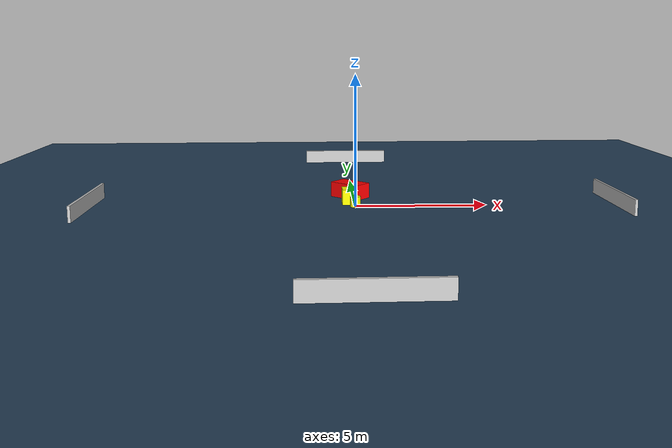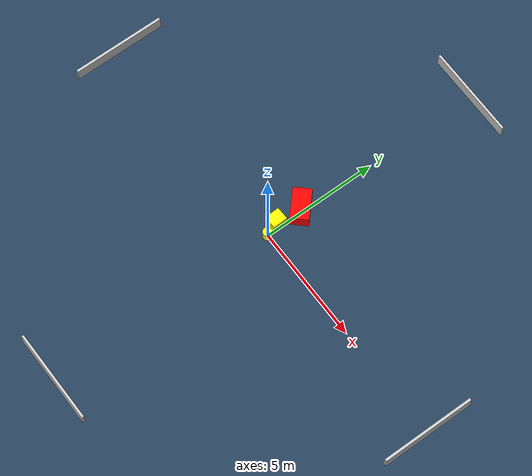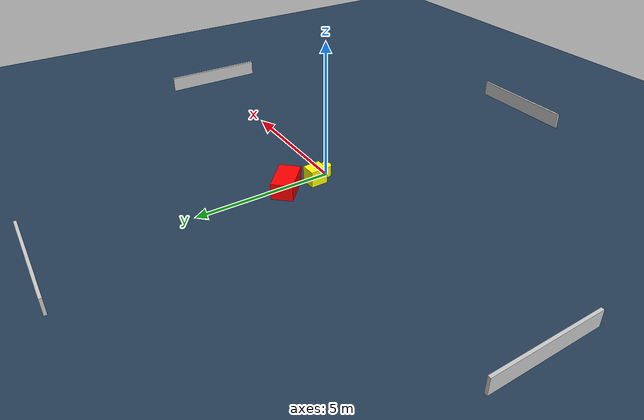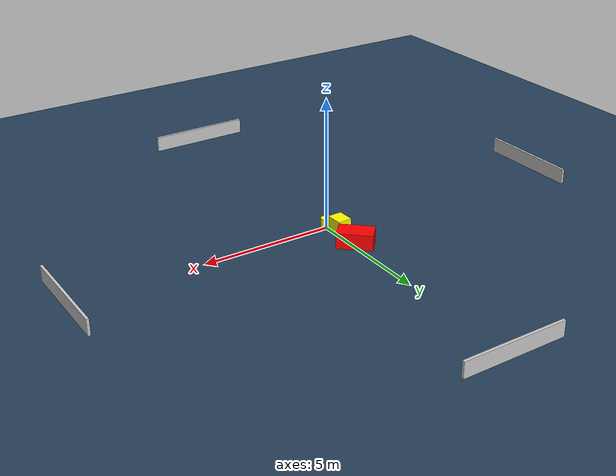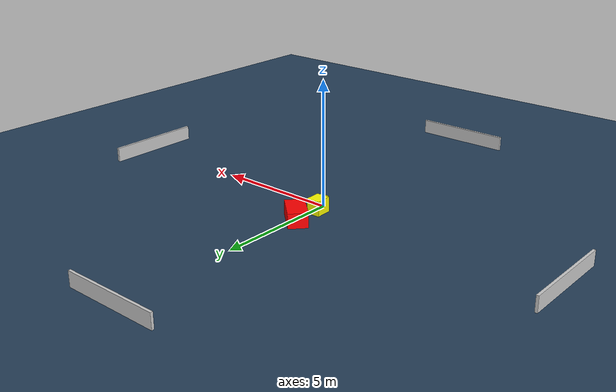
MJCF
<?xml version="1.0" ?>
<mujoco model="generated_environment">
  <option timestep="0.01" integrator="RK4" cone="elliptic"/>
  <default>
    <geom density="1"/>
  </default>
  <asset>
    <texture builtin="gradient" height="3072" name="skybox" rgb1="0.3 0.5 0.7" rgb2="0 0 0" type="skybox" width="512"/>
    <texture builtin="checker" height="300" name="groundplane" rgb1="0.2 0.3 0.4" rgb2="0.1 0.2 0.3" type="2d" width="300"/>
    <material name="groundplane" reflectance="0.2" texrepeat="5 5" texture="groundplane"/>
  </asset>
  <worldbody>
    <light dir="0 0 -1" directional="true" pos="0 0 1.5"/>
    <geom condim="3" friction="0.5 0.005 0.001" material="groundplane" name="floor" pos="0 0 0" size="0 0 0.05" type="plane"/>
    <body name="walls">
      <geom name="wall_1" condim="4" pos="-10.0 0.0 0.3" rgba="0.800000011920929 0.800000011920929 0.800000011920929 1.0" size="0.05 2.0 0.3" type="box"/>
      <geom name="wall_2" condim="4" pos="10.0 0.0 0.3" rgba="0.800000011920929 0.800000011920929 0.800000011920929 1.0" size="0.05 2.0 0.3" type="box"/>
      <geom name="wall_3" condim="4" pos="0.0 -10.0 0.3" rgba="0.800000011920929 0.800000011920929 0.800000011920929 1.0" size="2.0 0.05 0.3" type="box"/>
      <geom name="wall_4" condim="4" pos="0.0 10.0 0.3" rgba="0.800000011920929 0.800000011920929 0.800000011920929 1.0" size="2.0 0.05 0.3" type="box"/>
    </body>
    <body name="robot">
      <joint name="joint_x" type="slide" pos="0 0 0" axis="1 0 0"/>
      <joint name="joint_y" type="slide" pos="0 0 0" axis="0 1 0"/>
      <geom name="robot" type="cylinder" pos="0.0 0.0 0.2" size="0.2 0.2 0.0" mass="5.0" friction="1.0 0.005 0.0001" condim="4" rgba="1.0 1.0 0.0 1.0"/>
    </body>
    <body name="obstacle_1_movable">
      <geom name="obstacle_1_movable" condim="4" pos="-0.21218389896831139 0.5659286844334096 0.3" euler="0 0 92.27158724095284" friction="0.0 0.005 0.001" rgba="1.0 1.0 0.0 1.0" size="0.3238706632612084 0.2748064453678328 0.3" type="box" mass="0.1"/>
      <joint type="free"/>
    </body>
    <body name="obstacle_2_static">
      <geom name="obstacle_2_static" condim="4" pos="-0.12707990234487518 1.69851082370285 0.3" euler="0 0 317.61331982211954" friction="0.0 0.005 0.001" rgba="1.0 0.0 0.0 1.0" size="0.6644165564238578 0.3873583831461713 0.3" type="box"/>
    </body>
  </worldbody>
  <actuator>
    <motor name="actuator_x" joint="joint_x" gear="1" ctrlrange="-1 1"/>
    <motor name="actuator_y" joint="joint_y" gear="1" ctrlrange="-1 1"/>
  </actuator>
</mujoco>
